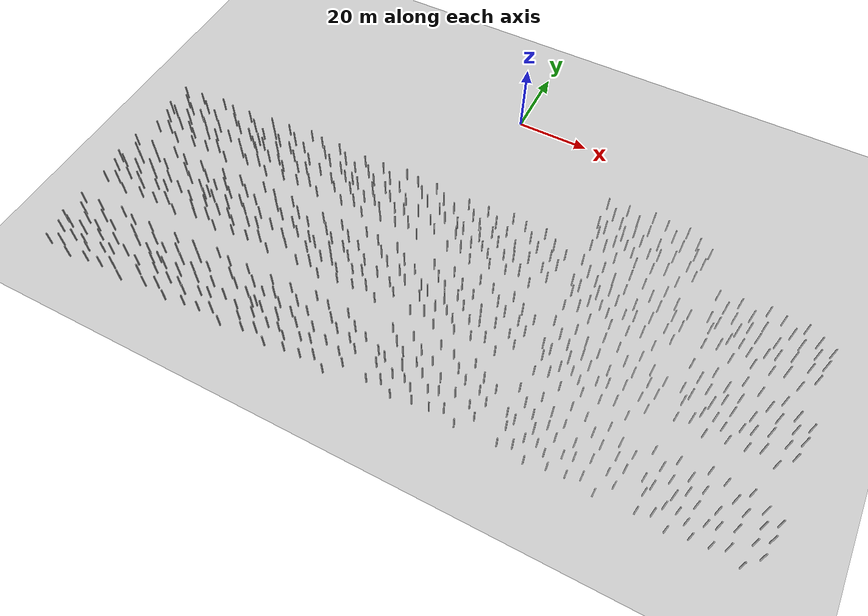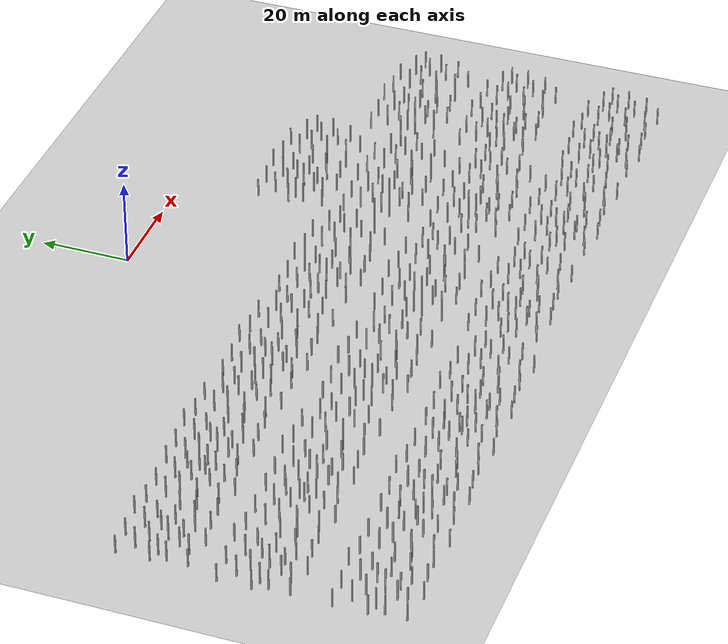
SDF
<sdf version="1.6">
 <world name="default">
  <model name="ground_plane">
   <static>1</static>
   <link name="link">
    <collision name="collision">
     <geometry><plane><normal>0 0 1</normal><size>100 100</size></plane></geometry>
     <surface><friction><ode><mu>100</mu><mu2>50</mu2></ode></friction></surface>
    </collision>
    <visual name="visual">
     <cast_shadows>0</cast_shadows>
     <geometry><plane><normal>0 0 1</normal><size>100 100</size></plane></geometry>
     <material>
      <script><uri>file://media/materials/scripts/gazebo.material</uri><name>Gazebo/Grey</name></script>
     </material>
    </visual>
   </link>
  </model>
  <model name="pillars_clone_4">
   <link name="body">
    <velocity_decay><linear>0</linear><angular>0</angular></velocity_decay>
    <visual name="visual">
     <pose>0 0 -0.001 0 -0 0</pose>
     <geometry><mesh><uri>model://pillars/pillars4.dae</uri><scale>1 1 1</scale></mesh></geometry>
    </visual>
    <collision name="pillars">
     <pose>0 0 -0.001 0 -0 0</pose>
     <geometry>
      <mesh>
       <uri>/home/huiyulin/Coding/TARE/multi_planning/Simulator/mrsl2_ws/src/mrsl_quadrotor/mrsl_models/models/pillars/pillars4.dae</uri>
       <scale>1 1 1</scale>
      </mesh>
     </geometry>
     <surface>
      <friction>
       <ode><mu>1</mu><mu2>1</mu2><fdir1>0 0 0</fdir1><slip1>0</slip1><slip2>0</slip2></ode>
       <torsional>
        <coefficient>1</coefficient>
        <patch_radius>0</patch_radius>
        <surface_radius>0</surface_radius>
        <use_patch_radius>1</use_patch_radius>
        <ode><slip>0</slip></ode>
       </torsional>
      </friction>
      <bounce><restitution_coefficient>0</restitution_coefficient><threshold>1e+06</threshold></bounce>
      <contact>
       <collide_without_contact>0</collide_without_contact>
       <collide_without_contact_bitmask>1</collide_without_contact_bitmask>
       <collide_bitmask>1</collide_bitmask>
       <ode>
        <soft_cfm>0</soft_cfm>
        <soft_erp>0.2</soft_erp>
        <kp>1e+13</kp>
        <kd>1</kd>
        <max_vel>0.01</max_vel>
        <min_depth>0</min_depth>
       </ode>
       <bullet>
        <split_impulse>1</split_impulse>
        <split_impulse_penetration_threshold>-0.01</split_impulse_penetration_threshold>
        <soft_cfm>0</soft_cfm>
        <soft_erp>0.2</soft_erp>
        <kp>1e+13</kp>
        <kd>1</kd>
       </bullet>
      </contact>
     </surface>
    </collision>
   </link>
   <static>1</static>
   <pose>65.8561 -40.5548 0 0 -0 0</pose>
  </model>
  <model name="pillars_clone_5">
   <link name="body">
    <velocity_decay><linear>0</linear><angular>0</angular></velocity_decay>
    <visual name="visual">
     <pose>0 0 -0.001 0 -0 0</pose>
     <geometry><mesh><uri>model://pillars/pillars4.dae</uri><scale>1 1 1</scale></mesh></geometry>
    </visual>
    <collision name="pillars">
     <pose>0 0 -0.001 0 -0 0</pose>
     <geometry>
      <mesh>
       <uri>/home/huiyulin/Coding/TARE/multi_planning/Simulator/mrsl2_ws/src/mrsl_quadrotor/mrsl_models/models/pillars/pillars4.dae</uri>
       <scale>1 1 1</scale>
      </mesh>
     </geometry>
     <surface>
      <friction>
       <ode><mu>1</mu><mu2>1</mu2><fdir1>0 0 0</fdir1><slip1>0</slip1><slip2>0</slip2></ode>
       <torsional>
        <coefficient>1</coefficient>
        <patch_radius>0</patch_radius>
        <surface_radius>0</surface_radius>
        <use_patch_radius>1</use_patch_radius>
        <ode><slip>0</slip></ode>
       </torsional>
      </friction>
      <bounce><restitution_coefficient>0</restitution_coefficient><threshold>1e+06</threshold></bounce>
      <contact>
       <collide_without_contact>0</collide_without_contact>
       <collide_without_contact_bitmask>1</collide_without_contact_bitmask>
       <collide_bitmask>1</collide_bitmask>
       <ode>
        <soft_cfm>0</soft_cfm>
        <soft_erp>0.2</soft_erp>
        <kp>1e+13</kp>
        <kd>1</kd>
        <max_vel>0.01</max_vel>
        <min_depth>0</min_depth>
       </ode>
       <bullet>
        <split_impulse>1</split_impulse>
        <split_impulse_penetration_threshold>-0.01</split_impulse_penetration_threshold>
        <soft_cfm>0</soft_cfm>
        <soft_erp>0.2</soft_erp>
        <kp>1e+13</kp>
        <kd>1</kd>
       </bullet>
      </contact>
     </surface>
    </collision>
   </link>
   <static>1</static>
   <pose>66.1522 -62.0358 0 0 -0 0</pose>
  </model>
  <model name="pillars_clone_6">
   <link name="body">
    <velocity_decay><linear>0</linear><angular>0</angular></velocity_decay>
    <visual name="visual">
     <pose>0 0 -0.001 0 -0 0</pose>
     <geometry><mesh><uri>model://pillars/pillars4.dae</uri><scale>1 1 1</scale></mesh></geometry>
    </visual>
    <collision name="pillars">
     <pose>0 0 -0.001 0 -0 0</pose>
     <geometry>
      <mesh>
       <uri>/home/huiyulin/Coding/TARE/multi_planning/Simulator/mrsl2_ws/src/mrsl_quadrotor/mrsl_models/models/pillars/pillars4.dae</uri>
       <scale>1 1 1</scale>
      </mesh>
     </geometry>
     <surface>
      <friction>
       <ode><mu>1</mu><mu2>1</mu2><fdir1>0 0 0</fdir1><slip1>0</slip1><slip2>0</slip2></ode>
       <torsional>
        <coefficient>1</coefficient>
        <patch_radius>0</patch_radius>
        <surface_radius>0</surface_radius>
        <use_patch_radius>1</use_patch_radius>
        <ode><slip>0</slip></ode>
       </torsional>
      </friction>
      <bounce><restitution_coefficient>0</restitution_coefficient><threshold>1e+06</threshold></bounce>
      <contact>
       <collide_without_contact>0</collide_without_contact>
       <collide_without_contact_bitmask>1</collide_without_contact_bitmask>
       <collide_bitmask>1</collide_bitmask>
       <ode>
        <soft_cfm>0</soft_cfm>
        <soft_erp>0.2</soft_erp>
        <kp>1e+13</kp>
        <kd>1</kd>
        <max_vel>0.01</max_vel>
        <min_depth>0</min_depth>
       </ode>
       <bullet>
        <split_impulse>1</split_impulse>
        <split_impulse_penetration_threshold>-0.01</split_impulse_penetration_threshold>
        <soft_cfm>0</soft_cfm>
        <soft_erp>0.2</soft_erp>
        <kp>1e+13</kp>
        <kd>1</kd>
       </bullet>
      </contact>
     </surface>
    </collision>
   </link>
   <static>1</static>
   <pose>65.6273 -86.881 0 0 -0 0</pose>
  </model>
  <model name="pillars_clone_7">
   <link name="body">
    <velocity_decay><linear>0</linear><angular>0</angular></velocity_decay>
    <visual name="visual">
     <pose>0 0 -0.001 0 -0 0</pose>
     <geometry><mesh><uri>model://pillars/pillars4.dae</uri><scale>1 1 1</scale></mesh></geometry>
    </visual>
    <collision name="pillars">
     <pose>0 0 -0.001 0 -0 0</pose>
     <geometry>
      <mesh>
       <uri>/home/huiyulin/Coding/TARE/multi_planning/Simulator/mrsl2_ws/src/mrsl_quadrotor/mrsl_models/models/pillars/pillars4.dae</uri>
       <scale>1 1 1</scale>
      </mesh>
     </geometry>
     <surface>
      <friction>
       <ode><mu>1</mu><mu2>1</mu2><fdir1>0 0 0</fdir1><slip1>0</slip1><slip2>0</slip2></ode>
       <torsional>
        <coefficient>1</coefficient>
        <patch_radius>0</patch_radius>
        <surface_radius>0</surface_radius>
        <use_patch_radius>1</use_patch_radius>
        <ode><slip>0</slip></ode>
       </torsional>
      </friction>
      <bounce><restitution_coefficient>0</restitution_coefficient><threshold>1e+06</threshold></bounce>
      <contact>
       <collide_without_contact>0</collide_without_contact>
       <collide_without_contact_bitmask>1</collide_without_contact_bitmask>
       <collide_bitmask>1</collide_bitmask>
       <ode>
        <soft_cfm>0</soft_cfm>
        <soft_erp>0.2</soft_erp>
        <kp>1e+13</kp>
        <kd>1</kd>
        <max_vel>0.01</max_vel>
        <min_depth>0</min_depth>
       </ode>
       <bullet>
        <split_impulse>1</split_impulse>
        <split_impulse_penetration_threshold>-0.01</split_impulse_penetration_threshold>
        <soft_cfm>0</soft_cfm>
        <soft_erp>0.2</soft_erp>
        <kp>1e+13</kp>
        <kd>1</kd>
       </bullet>
      </contact>
     </surface>
    </collision>
   </link>
   <static>1</static>
   <pose>32.8257 -86.7839 0 0 -0 0</pose>
  </model>
  <model name="pillars_clone_8">
   <link name="body">
    <velocity_decay><linear>0</linear><angular>0</angular></velocity_decay>
    <visual name="visual">
     <pose>0 0 -0.001 0 -0 0</pose>
     <geometry><mesh><uri>model://pillars/pillars4.dae</uri><scale>1 1 1</scale></mesh></geometry>
    </visual>
    <collision name="pillars">
     <pose>0 0 -0.001 0 -0 0</pose>
     <geometry>
      <mesh>
       <uri>/home/huiyulin/Coding/TARE/multi_planning/Simulator/mrsl2_ws/src/mrsl_quadrotor/mrsl_models/models/pillars/pillars4.dae</uri>
       <scale>1 1 1</scale>
      </mesh>
     </geometry>
     <surface>
      <friction>
       <ode><mu>1</mu><mu2>1</mu2><fdir1>0 0 0</fdir1><slip1>0</slip1><slip2>0</slip2></ode>
       <torsional>
        <coefficient>1</coefficient>
        <patch_radius>0</patch_radius>
        <surface_radius>0</surface_radius>
        <use_patch_radius>1</use_patch_radius>
        <ode><slip>0</slip></ode>
       </torsional>
      </friction>
      <bounce><restitution_coefficient>0</restitution_coefficient><threshold>1e+06</threshold></bounce>
      <contact>
       <collide_without_contact>0</collide_without_contact>
       <collide_without_contact_bitmask>1</collide_without_contact_bitmask>
       <collide_bitmask>1</collide_bitmask>
       <ode>
        <soft_cfm>0</soft_cfm>
        <soft_erp>0.2</soft_erp>
        <kp>1e+13</kp>
        <kd>1</kd>
        <max_vel>0.01</max_vel>
        <min_depth>0</min_depth>
       </ode>
       <bullet>
        <split_impulse>1</split_impulse>
        <split_impulse_penetration_threshold>-0.01</split_impulse_penetration_threshold>
        <soft_cfm>0</soft_cfm>
        <soft_erp>0.2</soft_erp>
        <kp>1e+13</kp>
        <kd>1</kd>
       </bullet>
      </contact>
     </surface>
    </collision>
   </link>
   <static>1</static>
   <pose>32.8636 -66.322 0 0 -0 0</pose>
  </model>
  <model name="pillars_clone_9">
   <link name="body">
    <velocity_decay><linear>0</linear><angular>0</angular></velocity_decay>
    <visual name="visual">
     <pose>0 0 -0.001 0 -0 0</pose>
     <geometry><mesh><uri>model://pillars/pillars4.dae</uri><scale>1 1 1</scale></mesh></geometry>
    </visual>
    <collision name="pillars">
     <pose>0 0 -0.001 0 -0 0</pose>
     <geometry>
      <mesh>
       <uri>/home/huiyulin/Coding/TARE/multi_planning/Simulator/mrsl2_ws/src/mrsl_quadrotor/mrsl_models/models/pillars/pillars4.dae</uri>
       <scale>1 1 1</scale>
      </mesh>
     </geometry>
     <surface>
      <friction>
       <ode><mu>1</mu><mu2>1</mu2><fdir1>0 0 0</fdir1><slip1>0</slip1><slip2>0</slip2></ode>
       <torsional>
        <coefficient>1</coefficient>
        <patch_radius>0</patch_radius>
        <surface_radius>0</surface_radius>
        <use_patch_radius>1</use_patch_radius>
        <ode><slip>0</slip></ode>
       </torsional>
      </friction>
      <bounce><restitution_coefficient>0</restitution_coefficient><threshold>1e+06</threshold></bounce>
      <contact>
       <collide_without_contact>0</collide_without_contact>
       <collide_without_contact_bitmask>1</collide_without_contact_bitmask>
       <collide_bitmask>1</collide_bitmask>
       <ode>
        <soft_cfm>0</soft_cfm>
        <soft_erp>0.2</soft_erp>
        <kp>1e+13</kp>
        <kd>1</kd>
        <max_vel>0.01</max_vel>
        <min_depth>0</min_depth>
       </ode>
       <bullet>
        <split_impulse>1</split_impulse>
        <split_impulse_penetration_threshold>-0.01</split_impulse_penetration_threshold>
        <soft_cfm>0</soft_cfm>
        <soft_erp>0.2</soft_erp>
        <kp>1e+13</kp>
        <kd>1</kd>
       </bullet>
      </contact>
     </surface>
    </collision>
   </link>
   <static>1</static>
   <pose>32.0594 -46.1445 0 0 -0 0</pose>
  </model>
  <model name="pillars_clone_10">
   <link name="body">
    <velocity_decay><linear>0</linear><angular>0</angular></velocity_decay>
    <visual name="visual">
     <pose>0 0 -0.001 0 -0 0</pose>
     <geometry><mesh><uri>model://pillars/pillars4.dae</uri><scale>1 1 1</scale></mesh></geometry>
    </visual>
    <collision name="pillars">
     <pose>0 0 -0.001 0 -0 0</pose>
     <geometry>
      <mesh>
       <uri>/home/huiyulin/Coding/TARE/multi_planning/Simulator/mrsl2_ws/src/mrsl_quadrotor/mrsl_models/models/pillars/pillars4.dae</uri>
       <scale>1 1 1</scale>
      </mesh>
     </geometry>
     <surface>
      <friction>
       <ode><mu>1</mu><mu2>1</mu2><fdir1>0 0 0</fdir1><slip1>0</slip1><slip2>0</slip2></ode>
       <torsional>
        <coefficient>1</coefficient>
        <patch_radius>0</patch_radius>
        <surface_radius>0</surface_radius>
        <use_patch_radius>1</use_patch_radius>
        <ode><slip>0</slip></ode>
       </torsional>
      </friction>
      <bounce><restitution_coefficient>0</restitution_coefficient><threshold>1e+06</threshold></bounce>
      <contact>
       <collide_without_contact>0</collide_without_contact>
       <collide_without_contact_bitmask>1</collide_without_contact_bitmask>
       <collide_bitmask>1</collide_bitmask>
       <ode>
        <soft_cfm>0</soft_cfm>
        <soft_erp>0.2</soft_erp>
        <kp>1e+13</kp>
        <kd>1</kd>
        <max_vel>0.01</max_vel>
        <min_depth>0</min_depth>
       </ode>
       <bullet>
        <split_impulse>1</split_impulse>
        <split_impulse_penetration_threshold>-0.01</split_impulse_penetration_threshold>
        <soft_cfm>0</soft_cfm>
        <soft_erp>0.2</soft_erp>
        <kp>1e+13</kp>
        <kd>1</kd>
       </bullet>
      </contact>
     </surface>
    </collision>
   </link>
   <static>1</static>
   <pose>31.1453 -25.9971 0 0 -0 0</pose>
  </model>
  <model name="pillars_clone_22">
   <link name="body">
    <velocity_decay><linear>0</linear><angular>0</angular></velocity_decay>
    <visual name="visual">
     <pose>0 0 -0.001 0 -0 0</pose>
     <geometry><mesh><uri>model://pillars/pillars4.dae</uri><scale>1 1 1</scale></mesh></geometry>
    </visual>
    <collision name="pillars">
     <pose>0 0 -0.001 0 -0 0</pose>
     <geometry>
      <mesh>
       <uri>/home/huiyulin/Coding/TARE/multi_planning/Simulator/mrsl2_ws/src/mrsl_quadrotor/mrsl_models/models/pillars/pillars4.dae</uri>
       <scale>1 1 1</scale>
      </mesh>
     </geometry>
     <surface>
      <friction>
       <ode><mu>1</mu><mu2>1</mu2><fdir1>0 0 0</fdir1><slip1>0</slip1><slip2>0</slip2></ode>
       <torsional>
        <coefficient>1</coefficient>
        <patch_radius>0</patch_radius>
        <surface_radius>0</surface_radius>
        <use_patch_radius>1</use_patch_radius>
        <ode><slip>0</slip></ode>
       </torsional>
      </friction>
      <bounce><restitution_coefficient>0</restitution_coefficient><threshold>1e+06</threshold></bounce>
      <contact>
       <collide_without_contact>0</collide_without_contact>
       <collide_without_contact_bitmask>1</collide_without_contact_bitmask>
       <collide_bitmask>1</collide_bitmask>
       <ode>
        <soft_cfm>0</soft_cfm>
        <soft_erp>0.2</soft_erp>
        <kp>1e+13</kp>
        <kd>1</kd>
        <max_vel>0.01</max_vel>
        <min_depth>0</min_depth>
       </ode>
       <bullet>
        <split_impulse>1</split_impulse>
        <split_impulse_penetration_threshold>-0.01</split_impulse_penetration_threshold>
        <soft_cfm>0</soft_cfm>
        <soft_erp>0.2</soft_erp>
        <kp>1e+13</kp>
        <kd>1</kd>
       </bullet>
      </contact>
     </surface>
    </collision>
   </link>
   <static>1</static>
   <pose>-1.67217 -43.6372 0 0 -0 0</pose>
  </model>
  <model name="pillars_clone_23">
   <link name="body">
    <velocity_decay><linear>0</linear><angular>0</angular></velocity_decay>
    <visual name="visual">
     <pose>0 0 -0.001 0 -0 0</pose>
     <geometry><mesh><uri>model://pillars/pillars4.dae</uri><scale>1 1 1</scale></mesh></geometry>
    </visual>
    <collision name="pillars">
     <pose>0 0 -0.001 0 -0 0</pose>
     <geometry>
      <mesh>
       <uri>/home/huiyulin/Coding/TARE/multi_planning/Simulator/mrsl2_ws/src/mrsl_quadrotor/mrsl_models/models/pillars/pillars4.dae</uri>
       <scale>1 1 1</scale>
      </mesh>
     </geometry>
     <surface>
      <friction>
       <ode><mu>1</mu><mu2>1</mu2><fdir1>0 0 0</fdir1><slip1>0</slip1><slip2>0</slip2></ode>
       <torsional>
        <coefficient>1</coefficient>
        <patch_radius>0</patch_radius>
        <surface_radius>0</surface_radius>
        <use_patch_radius>1</use_patch_radius>
        <ode><slip>0</slip></ode>
       </torsional>
      </friction>
      <bounce><restitution_coefficient>0</restitution_coefficient><threshold>1e+06</threshold></bounce>
      <contact>
       <collide_without_contact>0</collide_without_contact>
       <collide_without_contact_bitmask>1</collide_without_contact_bitmask>
       <collide_bitmask>1</collide_bitmask>
       <ode>
        <soft_cfm>0</soft_cfm>
        <soft_erp>0.2</soft_erp>
        <kp>1e+13</kp>
        <kd>1</kd>
        <max_vel>0.01</max_vel>
        <min_depth>0</min_depth>
       </ode>
       <bullet>
        <split_impulse>1</split_impulse>
        <split_impulse_penetration_threshold>-0.01</split_impulse_penetration_threshold>
        <soft_cfm>0</soft_cfm>
        <soft_erp>0.2</soft_erp>
        <kp>1e+13</kp>
        <kd>1</kd>
       </bullet>
      </contact>
     </surface>
    </collision>
   </link>
   <static>1</static>
   <pose>-0.89034 -65.1948 0 0 -0 0</pose>
  </model>
  <model name="pillars_clone_24">
   <link name="body">
    <velocity_decay><linear>0</linear><angular>0</angular></velocity_decay>
    <visual name="visual">
     <pose>0 0 -0.001 0 -0 0</pose>
     <geometry><mesh><uri>model://pillars/pillars4.dae</uri><scale>1 1 1</scale></mesh></geometry>
    </visual>
    <collision name="pillars">
     <pose>0 0 -0.001 0 -0 0</pose>
     <geometry>
      <mesh>
       <uri>/home/huiyulin/Coding/TARE/multi_planning/Simulator/mrsl2_ws/src/mrsl_quadrotor/mrsl_models/models/pillars/pillars4.dae</uri>
       <scale>1 1 1</scale>
      </mesh>
     </geometry>
     <surface>
      <friction>
       <ode><mu>1</mu><mu2>1</mu2><fdir1>0 0 0</fdir1><slip1>0</slip1><slip2>0</slip2></ode>
       <torsional>
        <coefficient>1</coefficient>
        <patch_radius>0</patch_radius>
        <surface_radius>0</surface_radius>
        <use_patch_radius>1</use_patch_radius>
        <ode><slip>0</slip></ode>
       </torsional>
      </friction>
      <bounce><restitution_coefficient>0</restitution_coefficient><threshold>1e+06</threshold></bounce>
      <contact>
       <collide_without_contact>0</collide_without_contact>
       <collide_without_contact_bitmask>1</collide_without_contact_bitmask>
       <collide_bitmask>1</collide_bitmask>
       <ode>
        <soft_cfm>0</soft_cfm>
        <soft_erp>0.2</soft_erp>
        <kp>1e+13</kp>
        <kd>1</kd>
        <max_vel>0.01</max_vel>
        <min_depth>0</min_depth>
       </ode>
       <bullet>
        <split_impulse>1</split_impulse>
        <split_impulse_penetration_threshold>-0.01</split_impulse_penetration_threshold>
        <soft_cfm>0</soft_cfm>
        <soft_erp>0.2</soft_erp>
        <kp>1e+13</kp>
        <kd>1</kd>
       </bullet>
      </contact>
     </surface>
    </collision>
   </link>
   <static>1</static>
   <pose>-1.09285 -86.4822 0 0 -0 0</pose>
  </model>
  <model name="pillars_clone_31">
   <link name="body">
    <velocity_decay><linear>0</linear><angular>0</angular></velocity_decay>
    <visual name="visual">
     <pose>0 0 -0.001 0 -0 0</pose>
     <geometry><mesh><uri>model://pillars/pillars4.dae</uri><scale>1 1 1</scale></mesh></geometry>
    </visual>
    <collision name="pillars">
     <pose>0 0 -0.001 0 -0 0</pose>
     <geometry>
      <mesh>
       <uri>/home/huiyulin/Coding/TARE/multi_planning/Simulator/mrsl2_ws/src/mrsl_quadrotor/mrsl_models/models/pillars/pillars4.dae</uri>
       <scale>1 1 1</scale>
      </mesh>
     </geometry>
     <surface>
      <friction>
       <ode><mu>1</mu><mu2>1</mu2><fdir1>0 0 0</fdir1><slip1>0</slip1><slip2>0</slip2></ode>
       <torsional>
        <coefficient>1</coefficient>
        <patch_radius>0</patch_radius>
        <surface_radius>0</surface_radius>
        <use_patch_radius>1</use_patch_radius>
        <ode><slip>0</slip></ode>
       </torsional>
      </friction>
      <bounce><restitution_coefficient>0</restitution_coefficient><threshold>1e+06</threshold></bounce>
      <contact>
       <collide_without_contact>0</collide_without_contact>
       <collide_without_contact_bitmask>1</collide_without_contact_bitmask>
       <collide_bitmask>1</collide_bitmask>
       <ode>
        <soft_cfm>0</soft_cfm>
        <soft_erp>0.2</soft_erp>
        <kp>1e+13</kp>
        <kd>1</kd>
        <max_vel>0.01</max_vel>
        <min_depth>0</min_depth>
       </ode>
       <bullet>
        <split_impulse>1</split_impulse>
        <split_impulse_penetration_threshold>-0.01</split_impulse_penetration_threshold>
        <soft_cfm>0</soft_cfm>
        <soft_erp>0.2</soft_erp>
        <kp>1e+13</kp>
        <kd>1</kd>
       </bullet>
      </contact>
     </surface>
    </collision>
   </link>
   <static>1</static>
   <pose>-33.8718 -43.3568 0 0 -0 0</pose>
  </model>
  <model name="pillars_clone_32">
   <link name="body">
    <velocity_decay><linear>0</linear><angular>0</angular></velocity_decay>
    <visual name="visual">
     <pose>0 0 -0.001 0 -0 0</pose>
     <geometry><mesh><uri>model://pillars/pillars4.dae</uri><scale>1 1 1</scale></mesh></geometry>
    </visual>
    <collision name="pillars">
     <pose>0 0 -0.001 0 -0 0</pose>
     <geometry>
      <mesh>
       <uri>/home/huiyulin/Coding/TARE/multi_planning/Simulator/mrsl2_ws/src/mrsl_quadrotor/mrsl_models/models/pillars/pillars4.dae</uri>
       <scale>1 1 1</scale>
      </mesh>
     </geometry>
     <surface>
      <friction>
       <ode><mu>1</mu><mu2>1</mu2><fdir1>0 0 0</fdir1><slip1>0</slip1><slip2>0</slip2></ode>
       <torsional>
        <coefficient>1</coefficient>
        <patch_radius>0</patch_radius>
        <surface_radius>0</surface_radius>
        <use_patch_radius>1</use_patch_radius>
        <ode><slip>0</slip></ode>
       </torsional>
      </friction>
      <bounce><restitution_coefficient>0</restitution_coefficient><threshold>1e+06</threshold></bounce>
      <contact>
       <collide_without_contact>0</collide_without_contact>
       <collide_without_contact_bitmask>1</collide_without_contact_bitmask>
       <collide_bitmask>1</collide_bitmask>
       <ode>
        <soft_cfm>0</soft_cfm>
        <soft_erp>0.2</soft_erp>
        <kp>1e+13</kp>
        <kd>1</kd>
        <max_vel>0.01</max_vel>
        <min_depth>0</min_depth>
       </ode>
       <bullet>
        <split_impulse>1</split_impulse>
        <split_impulse_penetration_threshold>-0.01</split_impulse_penetration_threshold>
        <soft_cfm>0</soft_cfm>
        <soft_erp>0.2</soft_erp>
        <kp>1e+13</kp>
        <kd>1</kd>
       </bullet>
      </contact>
     </surface>
    </collision>
   </link>
   <static>1</static>
   <pose>-33.7779 -65.5949 0 0 -0 0</pose>
  </model>
  <model name="pillars_clone_33">
   <link name="body">
    <velocity_decay><linear>0</linear><angular>0</angular></velocity_decay>
    <visual name="visual">
     <pose>0 0 -0.001 0 -0 0</pose>
     <geometry><mesh><uri>model://pillars/pillars4.dae</uri><scale>1 1 1</scale></mesh></geometry>
    </visual>
    <collision name="pillars">
     <pose>0 0 -0.001 0 -0 0</pose>
     <geometry>
      <mesh>
       <uri>/home/huiyulin/Coding/TARE/multi_planning/Simulator/mrsl2_ws/src/mrsl_quadrotor/mrsl_models/models/pillars/pillars4.dae</uri>
       <scale>1 1 1</scale>
      </mesh>
     </geometry>
     <surface>
      <friction>
       <ode><mu>1</mu><mu2>1</mu2><fdir1>0 0 0</fdir1><slip1>0</slip1><slip2>0</slip2></ode>
       <torsional>
        <coefficient>1</coefficient>
        <patch_radius>0</patch_radius>
        <surface_radius>0</surface_radius>
        <use_patch_radius>1</use_patch_radius>
        <ode><slip>0</slip></ode>
       </torsional>
      </friction>
      <bounce><restitution_coefficient>0</restitution_coefficient><threshold>1e+06</threshold></bounce>
      <contact>
       <collide_without_contact>0</collide_without_contact>
       <collide_without_contact_bitmask>1</collide_without_contact_bitmask>
       <collide_bitmask>1</collide_bitmask>
       <ode>
        <soft_cfm>0</soft_cfm>
        <soft_erp>0.2</soft_erp>
        <kp>1e+13</kp>
        <kd>1</kd>
        <max_vel>0.01</max_vel>
        <min_depth>0</min_depth>
       </ode>
       <bullet>
        <split_impulse>1</split_impulse>
        <split_impulse_penetration_threshold>-0.01</split_impulse_penetration_threshold>
        <soft_cfm>0</soft_cfm>
        <soft_erp>0.2</soft_erp>
        <kp>1e+13</kp>
        <kd>1</kd>
       </bullet>
      </contact>
     </surface>
    </collision>
   </link>
   <static>1</static>
   <pose>-34.8105 -88.5488 0 0 -0 0</pose>
  </model>
  <model name="pillars_clone_40">
   <link name="body">
    <velocity_decay><linear>0</linear><angular>0</angular></velocity_decay>
    <visual name="visual">
     <pose>0 0 -0.001 0 -0 0</pose>
     <geometry><mesh><uri>model://pillars/pillars4.dae</uri><scale>1 1 1</scale></mesh></geometry>
    </visual>
    <collision name="pillars">
     <pose>0 0 -0.001 0 -0 0</pose>
     <geometry>
      <mesh>
       <uri>/home/huiyulin/Coding/TARE/multi_planning/Simulator/mrsl2_ws/src/mrsl_quadrotor/mrsl_models/models/pillars/pillars4.dae</uri>
       <scale>1 1 1</scale>
      </mesh>
     </geometry>
     <surface>
      <friction>
       <ode><mu>1</mu><mu2>1</mu2><fdir1>0 0 0</fdir1><slip1>0</slip1><slip2>0</slip2></ode>
       <torsional>
        <coefficient>1</coefficient>
        <patch_radius>0</patch_radius>
        <surface_radius>0</surface_radius>
        <use_patch_radius>1</use_patch_radius>
        <ode><slip>0</slip></ode>
       </torsional>
      </friction>
      <bounce><restitution_coefficient>0</restitution_coefficient><threshold>1e+06</threshold></bounce>
      <contact>
       <collide_without_contact>0</collide_without_contact>
       <collide_without_contact_bitmask>1</collide_without_contact_bitmask>
       <collide_bitmask>1</collide_bitmask>
       <ode>
        <soft_cfm>0</soft_cfm>
        <soft_erp>0.2</soft_erp>
        <kp>1e+13</kp>
        <kd>1</kd>
        <max_vel>0.01</max_vel>
        <min_depth>0</min_depth>
       </ode>
       <bullet>
        <split_impulse>1</split_impulse>
        <split_impulse_penetration_threshold>-0.01</split_impulse_penetration_threshold>
        <soft_cfm>0</soft_cfm>
        <soft_erp>0.2</soft_erp>
        <kp>1e+13</kp>
        <kd>1</kd>
       </bullet>
      </contact>
     </surface>
    </collision>
   </link>
   <static>1</static>
   <pose>-64.5573 -43.2854 0 0 -0 0</pose>
  </model>
  <model name="pillars_clone_41">
   <link name="body">
    <velocity_decay><linear>0</linear><angular>0</angular></velocity_decay>
    <visual name="visual">
     <pose>0 0 -0.001 0 -0 0</pose>
     <geometry><mesh><uri>model://pillars/pillars4.dae</uri><scale>1 1 1</scale></mesh></geometry>
    </visual>
    <collision name="pillars">
     <pose>0 0 -0.001 0 -0 0</pose>
     <geometry>
      <mesh>
       <uri>/home/huiyulin/Coding/TARE/multi_planning/Simulator/mrsl2_ws/src/mrsl_quadrotor/mrsl_models/models/pillars/pillars4.dae</uri>
       <scale>1 1 1</scale>
      </mesh>
     </geometry>
     <surface>
      <friction>
       <ode><mu>1</mu><mu2>1</mu2><fdir1>0 0 0</fdir1><slip1>0</slip1><slip2>0</slip2></ode>
       <torsional>
        <coefficient>1</coefficient>
        <patch_radius>0</patch_radius>
        <surface_radius>0</surface_radius>
        <use_patch_radius>1</use_patch_radius>
        <ode><slip>0</slip></ode>
       </torsional>
      </friction>
      <bounce><restitution_coefficient>0</restitution_coefficient><threshold>1e+06</threshold></bounce>
      <contact>
       <collide_without_contact>0</collide_without_contact>
       <collide_without_contact_bitmask>1</collide_without_contact_bitmask>
       <collide_bitmask>1</collide_bitmask>
       <ode>
        <soft_cfm>0</soft_cfm>
        <soft_erp>0.2</soft_erp>
        <kp>1e+13</kp>
        <kd>1</kd>
        <max_vel>0.01</max_vel>
        <min_depth>0</min_depth>
       </ode>
       <bullet>
        <split_impulse>1</split_impulse>
        <split_impulse_penetration_threshold>-0.01</split_impulse_penetration_threshold>
        <soft_cfm>0</soft_cfm>
        <soft_erp>0.2</soft_erp>
        <kp>1e+13</kp>
        <kd>1</kd>
       </bullet>
      </contact>
     </surface>
    </collision>
   </link>
   <static>1</static>
   <pose>-65.9536 -65.3861 0 0 -0 0</pose>
  </model>
  <model name="pillars_clone_42">
   <link name="body">
    <velocity_decay><linear>0</linear><angular>0</angular></velocity_decay>
    <visual name="visual">
     <pose>0 0 -0.001 0 -0 0</pose>
     <geometry><mesh><uri>model://pillars/pillars4.dae</uri><scale>1 1 1</scale></mesh></geometry>
    </visual>
    <collision name="pillars">
     <pose>0 0 -0.001 0 -0 0</pose>
     <geometry>
      <mesh>
       <uri>/home/huiyulin/Coding/TARE/multi_planning/Simulator/mrsl2_ws/src/mrsl_quadrotor/mrsl_models/models/pillars/pillars4.dae</uri>
       <scale>1 1 1</scale>
      </mesh>
     </geometry>
     <surface>
      <friction>
       <ode><mu>1</mu><mu2>1</mu2><fdir1>0 0 0</fdir1><slip1>0</slip1><slip2>0</slip2></ode>
       <torsional>
        <coefficient>1</coefficient>
        <patch_radius>0</patch_radius>
        <surface_radius>0</surface_radius>
        <use_patch_radius>1</use_patch_radius>
        <ode><slip>0</slip></ode>
       </torsional>
      </friction>
      <bounce><restitution_coefficient>0</restitution_coefficient><threshold>1e+06</threshold></bounce>
      <contact>
       <collide_without_contact>0</collide_without_contact>
       <collide_without_contact_bitmask>1</collide_without_contact_bitmask>
       <collide_bitmask>1</collide_bitmask>
       <ode>
        <soft_cfm>0</soft_cfm>
        <soft_erp>0.2</soft_erp>
        <kp>1e+13</kp>
        <kd>1</kd>
        <max_vel>0.01</max_vel>
        <min_depth>0</min_depth>
       </ode>
       <bullet>
        <split_impulse>1</split_impulse>
        <split_impulse_penetration_threshold>-0.01</split_impulse_penetration_threshold>
        <soft_cfm>0</soft_cfm>
        <soft_erp>0.2</soft_erp>
        <kp>1e+13</kp>
        <kd>1</kd>
       </bullet>
      </contact>
     </surface>
    </collision>
   </link>
   <static>1</static>
   <pose>-64.0785 -89.1642 0 0 -0 0</pose>
  </model>
  <model name="pillars_clone_43">
   <link name="body">
    <velocity_decay><linear>0</linear><angular>0</angular></velocity_decay>
    <visual name="visual">
     <pose>0 0 -0.001 0 -0 0</pose>
     <geometry><mesh><uri>model://pillars/pillars4.dae</uri><scale>1 1 1</scale></mesh></geometry>
    </visual>
    <collision name="pillars">
     <pose>0 0 -0.001 0 -0 0</pose>
     <geometry>
      <mesh>
       <uri>/home/huiyulin/Coding/TARE/multi_planning/Simulator/mrsl2_ws/src/mrsl_quadrotor/mrsl_models/models/pillars/pillars4.dae</uri>
       <scale>1 1 1</scale>
      </mesh>
     </geometry>
     <surface>
      <friction>
       <ode><mu>1</mu><mu2>1</mu2><fdir1>0 0 0</fdir1><slip1>0</slip1><slip2>0</slip2></ode>
       <torsional>
        <coefficient>1</coefficient>
        <patch_radius>0</patch_radius>
        <surface_radius>0</surface_radius>
        <use_patch_radius>1</use_patch_radius>
        <ode><slip>0</slip></ode>
       </torsional>
      </friction>
      <bounce><restitution_coefficient>0</restitution_coefficient><threshold>1e+06</threshold></bounce>
      <contact>
       <collide_without_contact>0</collide_without_contact>
       <collide_without_contact_bitmask>1</collide_without_contact_bitmask>
       <collide_bitmask>1</collide_bitmask>
       <ode>
        <soft_cfm>0</soft_cfm>
        <soft_erp>0.2</soft_erp>
        <kp>1e+13</kp>
        <kd>1</kd>
        <max_vel>0.01</max_vel>
        <min_depth>0</min_depth>
       </ode>
       <bullet>
        <split_impulse>1</split_impulse>
        <split_impulse_penetration_threshold>-0.01</split_impulse_penetration_threshold>
        <soft_cfm>0</soft_cfm>
        <soft_erp>0.2</soft_erp>
        <kp>1e+13</kp>
        <kd>1</kd>
       </bullet>
      </contact>
     </surface>
    </collision>
   </link>
   <static>1</static>
   <pose>-94.2101 -89.9669 0 0 -0 0</pose>
  </model>
  <model name="pillars_clone_44">
   <link name="body">
    <velocity_decay><linear>0</linear><angular>0</angular></velocity_decay>
    <visual name="visual">
     <pose>0 0 -0.001 0 -0 0</pose>
     <geometry><mesh><uri>model://pillars/pillars4.dae</uri><scale>1 1 1</scale></mesh></geometry>
    </visual>
    <collision name="pillars">
     <pose>0 0 -0.001 0 -0 0</pose>
     <geometry>
      <mesh>
       <uri>/home/huiyulin/Coding/TARE/multi_planning/Simulator/mrsl2_ws/src/mrsl_quadrotor/mrsl_models/models/pillars/pillars4.dae</uri>
       <scale>1 1 1</scale>
      </mesh>
     </geometry>
     <surface>
      <friction>
       <ode><mu>1</mu><mu2>1</mu2><fdir1>0 0 0</fdir1><slip1>0</slip1><slip2>0</slip2></ode>
       <torsional>
        <coefficient>1</coefficient>
        <patch_radius>0</patch_radius>
        <surface_radius>0</surface_radius>
        <use_patch_radius>1</use_patch_radius>
        <ode><slip>0</slip></ode>
       </torsional>
      </friction>
      <bounce><restitution_coefficient>0</restitution_coefficient><threshold>1e+06</threshold></bounce>
      <contact>
       <collide_without_contact>0</collide_without_contact>
       <collide_without_contact_bitmask>1</collide_without_contact_bitmask>
       <collide_bitmask>1</collide_bitmask>
       <ode>
        <soft_cfm>0</soft_cfm>
        <soft_erp>0.2</soft_erp>
        <kp>1e+13</kp>
        <kd>1</kd>
        <max_vel>0.01</max_vel>
        <min_depth>0</min_depth>
       </ode>
       <bullet>
        <split_impulse>1</split_impulse>
        <split_impulse_penetration_threshold>-0.01</split_impulse_penetration_threshold>
        <soft_cfm>0</soft_cfm>
        <soft_erp>0.2</soft_erp>
        <kp>1e+13</kp>
        <kd>1</kd>
       </bullet>
      </contact>
     </surface>
    </collision>
   </link>
   <static>1</static>
   <pose>-94.9882 -66.385 0 0 -0 0</pose>
  </model>
  <model name="pillars_clone_45">
   <link name="body">
    <velocity_decay><linear>0</linear><angular>0</angular></velocity_decay>
    <visual name="visual">
     <pose>0 0 -0.001 0 -0 0</pose>
     <geometry><mesh><uri>model://pillars/pillars4.dae</uri><scale>1 1 1</scale></mesh></geometry>
    </visual>
    <collision name="pillars">
     <pose>0 0 -0.001 0 -0 0</pose>
     <geometry>
      <mesh>
       <uri>/home/huiyulin/Coding/TARE/multi_planning/Simulator/mrsl2_ws/src/mrsl_quadrotor/mrsl_models/models/pillars/pillars4.dae</uri>
       <scale>1 1 1</scale>
      </mesh>
     </geometry>
     <surface>
      <friction>
       <ode><mu>1</mu><mu2>1</mu2><fdir1>0 0 0</fdir1><slip1>0</slip1><slip2>0</slip2></ode>
       <torsional>
        <coefficient>1</coefficient>
        <patch_radius>0</patch_radius>
        <surface_radius>0</surface_radius>
        <use_patch_radius>1</use_patch_radius>
        <ode><slip>0</slip></ode>
       </torsional>
      </friction>
      <bounce><restitution_coefficient>0</restitution_coefficient><threshold>1e+06</threshold></bounce>
      <contact>
       <collide_without_contact>0</collide_without_contact>
       <collide_without_contact_bitmask>1</collide_without_contact_bitmask>
       <collide_bitmask>1</collide_bitmask>
       <ode>
        <soft_cfm>0</soft_cfm>
        <soft_erp>0.2</soft_erp>
        <kp>1e+13</kp>
        <kd>1</kd>
        <max_vel>0.01</max_vel>
        <min_depth>0</min_depth>
       </ode>
       <bullet>
        <split_impulse>1</split_impulse>
        <split_impulse_penetration_threshold>-0.01</split_impulse_penetration_threshold>
        <soft_cfm>0</soft_cfm>
        <soft_erp>0.2</soft_erp>
        <kp>1e+13</kp>
        <kd>1</kd>
       </bullet>
      </contact>
     </surface>
    </collision>
   </link>
   <static>1</static>
   <pose>-93.8235 -44.6349 0 0 -0 0</pose>
  </model>
 </world>
</sdf>
